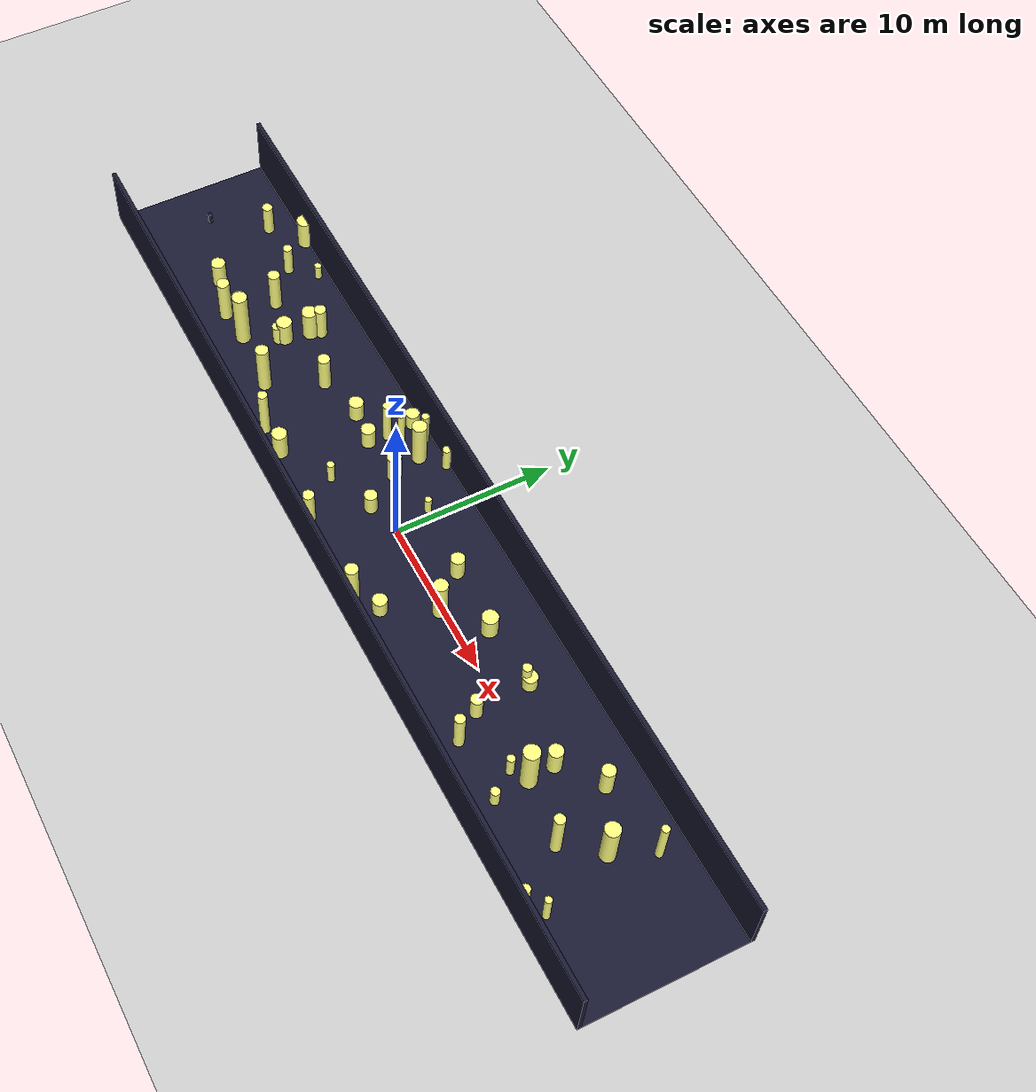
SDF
<?xml version="1.0"?>
<sdf version="1.4">
  <world name="default">
    <gui>
      <camera name="user_camera">
        <pose>-20 -30 40 0 0.66 0.83</pose>
      </camera>
    </gui>
    <include>
      <uri>model://ground_plane</uri>
    </include>
    <include>
      <uri>model://sun</uri>
    </include>
    <scene>
      <shadows>0</shadows>
    </scene>
    <model name="forest">
      <static>true</static>
      <link name="cylinder0">
        <pose>-15.289260330830452 2.4499274054998743 1.1608418596724268 0 0 0 </pose>
        <visual name="visual">
          <geometry>
            <cylinder>
              <radius>0.3690294138205221</radius>
              <length>2.3216837193448536</length>
            </cylinder>
          </geometry>
          <material>
            <ambient>0.6 0.6 0.6 1</ambient>
            <diffuse>1 1 0.5 1</diffuse>
            <specular>0 0 0</specular>
            <emissive>0 0 0 1</emissive>
          </material>
        </visual>
        <collision name="collision">
          <geometry>
            <cylinder>
              <radius>0.3690294138205221</radius>
              <length>2.3216837193448536</length>
            </cylinder>
          </geometry>
          <max_contacts>0</max_contacts>
        </collision>
      </link>
      <link name="cylinder1">
        <pose>-15.572497373251965 1.8468787676419964 1.0574849576745982 0 0 0 </pose>
        <visual name="visual">
          <geometry>
            <cylinder>
              <radius>0.48398743980550707</radius>
              <length>2.1149699153491963</length>
            </cylinder>
          </geometry>
          <material>
            <ambient>0.6 0.6 0.6 1</ambient>
            <diffuse>1 1 0.5 1</diffuse>
            <specular>0 0 0</specular>
            <emissive>0 0 0 1</emissive>
          </material>
        </visual>
        <collision name="collision">
          <geometry>
            <cylinder>
              <radius>0.48398743980550707</radius>
              <length>2.1149699153491963</length>
            </cylinder>
          </geometry>
          <max_contacts>0</max_contacts>
        </collision>
      </link>
      <link name="cylinder2">
        <pose>-15.984993093523931 -0.16406091697505154 0.6859283784338622 0 0 0 </pose>
        <visual name="visual">
          <geometry>
            <cylinder>
              <radius>0.3185983253345309</radius>
              <length>1.3718567568677245</length>
            </cylinder>
          </geometry>
          <material>
            <ambient>0.6 0.6 0.6 1</ambient>
            <diffuse>1 1 0.5 1</diffuse>
            <specular>0 0 0</specular>
            <emissive>0 0 0 1</emissive>
          </material>
        </visual>
        <collision name="collision">
          <geometry>
            <cylinder>
              <radius>0.3185983253345309</radius>
              <length>1.3718567568677245</length>
            </cylinder>
          </geometry>
          <max_contacts>0</max_contacts>
        </collision>
      </link>
      <link name="cylinder3">
        <pose>-24.666872875678358 3.132232859912227 1.058898304421697 0 0 0 </pose>
        <visual name="visual">
          <geometry>
            <cylinder>
              <radius>0.3321329737576638</radius>
              <length>2.117796608843394</length>
            </cylinder>
          </geometry>
          <material>
            <ambient>0.6 0.6 0.6 1</ambient>
            <diffuse>1 1 0.5 1</diffuse>
            <specular>0 0 0</specular>
            <emissive>0 0 0 1</emissive>
          </material>
        </visual>
        <collision name="collision">
          <geometry>
            <cylinder>
              <radius>0.3321329737576638</radius>
              <length>2.117796608843394</length>
            </cylinder>
          </geometry>
          <max_contacts>0</max_contacts>
        </collision>
      </link>
      <link name="cylinder4">
        <pose>-19.27921544847548 -2.227011595769776 1.5180359666071812 0 0 0 </pose>
        <visual name="visual">
          <geometry>
            <cylinder>
              <radius>0.3972547110706489</radius>
              <length>3.0360719332143624</length>
            </cylinder>
          </geometry>
          <material>
            <ambient>0.6 0.6 0.6 1</ambient>
            <diffuse>1 1 0.5 1</diffuse>
            <specular>0 0 0</specular>
            <emissive>0 0 0 1</emissive>
          </material>
        </visual>
        <collision name="collision">
          <geometry>
            <cylinder>
              <radius>0.3972547110706489</radius>
              <length>3.0360719332143624</length>
            </cylinder>
          </geometry>
          <max_contacts>0</max_contacts>
        </collision>
      </link>
      <link name="cylinder5">
        <pose>-20.918100866194457 2.822550952235689 1.0514446093071528 0 0 0 </pose>
        <visual name="visual">
          <geometry>
            <cylinder>
              <radius>0.29275987572240236</radius>
              <length>2.1028892186143056</length>
            </cylinder>
          </geometry>
          <material>
            <ambient>0.6 0.6 0.6 1</ambient>
            <diffuse>1 1 0.5 1</diffuse>
            <specular>0 0 0</specular>
            <emissive>0 0 0 1</emissive>
          </material>
        </visual>
        <collision name="collision">
          <geometry>
            <cylinder>
              <radius>0.29275987572240236</radius>
              <length>2.1028892186143056</length>
            </cylinder>
          </geometry>
          <max_contacts>0</max_contacts>
        </collision>
      </link>
      <link name="cylinder6">
        <pose>-5.065670430147819 4.452285074561852 1.202775650062124 0 0 0 </pose>
        <visual name="visual">
          <geometry>
            <cylinder>
              <radius>0.2304358945814513</radius>
              <length>2.405551300124248</length>
            </cylinder>
          </geometry>
          <material>
            <ambient>0.6 0.6 0.6 1</ambient>
            <diffuse>1 1 0.5 1</diffuse>
            <specular>0 0 0</specular>
            <emissive>0 0 0 1</emissive>
          </material>
        </visual>
        <collision name="collision">
          <geometry>
            <cylinder>
              <radius>0.2304358945814513</radius>
              <length>2.405551300124248</length>
            </cylinder>
          </geometry>
          <max_contacts>0</max_contacts>
        </collision>
      </link>
      <link name="cylinder7">
        <pose>-22.628017444352732 4.798529005148703 1.0204177521717324 0 0 0 </pose>
        <visual name="visual">
          <geometry>
            <cylinder>
              <radius>0.49737727974928087</radius>
              <length>2.0408355043434647</length>
            </cylinder>
          </geometry>
          <material>
            <ambient>0.6 0.6 0.6 1</ambient>
            <diffuse>1 1 0.5 1</diffuse>
            <specular>0 0 0</specular>
            <emissive>0 0 0 1</emissive>
          </material>
        </visual>
        <collision name="collision">
          <geometry>
            <cylinder>
              <radius>0.49737727974928087</radius>
              <length>2.0408355043434647</length>
            </cylinder>
          </geometry>
          <max_contacts>0</max_contacts>
        </collision>
      </link>
      <link name="cylinder8">
        <pose>4.079479252383962 1.8499735629052791 0.790864636766508 0 0 0 </pose>
        <visual name="visual">
          <geometry>
            <cylinder>
              <radius>0.41752556517894135</radius>
              <length>1.581729273533016</length>
            </cylinder>
          </geometry>
          <material>
            <ambient>0.6 0.6 0.6 1</ambient>
            <diffuse>1 1 0.5 1</diffuse>
            <specular>0 0 0</specular>
            <emissive>0 0 0 1</emissive>
          </material>
        </visual>
        <collision name="collision">
          <geometry>
            <cylinder>
              <radius>0.41752556517894135</radius>
              <length>1.581729273533016</length>
            </cylinder>
          </geometry>
          <max_contacts>0</max_contacts>
        </collision>
      </link>
      <link name="cylinder9">
        <pose>-17.132511887638774 -2.010830496490482 1.9184919214557403 0 0 0 </pose>
        <visual name="visual">
          <geometry>
            <cylinder>
              <radius>0.46853598198087126</radius>
              <length>3.8369838429114806</length>
            </cylinder>
          </geometry>
          <material>
            <ambient>0.6 0.6 0.6 1</ambient>
            <diffuse>1 1 0.5 1</diffuse>
            <specular>0 0 0</specular>
            <emissive>0 0 0 1</emissive>
          </material>
        </visual>
        <collision name="collision">
          <geometry>
            <cylinder>
              <radius>0.46853598198087126</radius>
              <length>3.8369838429114806</length>
            </cylinder>
          </geometry>
          <max_contacts>0</max_contacts>
        </collision>
      </link>
      <link name="cylinder10">
        <pose>23.256669371672203 -4.39508641309501 1.1496753164579943 0 0 0 </pose>
        <visual name="visual">
          <geometry>
            <cylinder>
              <radius>0.2746978614766049</radius>
              <length>2.2993506329159885</length>
            </cylinder>
          </geometry>
          <material>
            <ambient>0.6 0.6 0.6 1</ambient>
            <diffuse>1 1 0.5 1</diffuse>
            <specular>0 0 0</specular>
            <emissive>0 0 0 1</emissive>
          </material>
        </visual>
        <collision name="collision">
          <geometry>
            <cylinder>
              <radius>0.2746978614766049</radius>
              <length>2.2993506329159885</length>
            </cylinder>
          </geometry>
          <max_contacts>0</max_contacts>
        </collision>
      </link>
      <link name="cylinder11">
        <pose>-0.4873342173589492 2.3243197278888283 0.5816434447847749 0 0 0 </pose>
        <visual name="visual">
          <geometry>
            <cylinder>
              <radius>0.2086343888917833</radius>
              <length>1.1632868895695498</length>
            </cylinder>
          </geometry>
          <material>
            <ambient>0.6 0.6 0.6 1</ambient>
            <diffuse>1 1 0.5 1</diffuse>
            <specular>0 0 0</specular>
            <emissive>0 0 0 1</emissive>
          </material>
        </visual>
        <collision name="collision">
          <geometry>
            <cylinder>
              <radius>0.2086343888917833</radius>
              <length>1.1632868895695498</length>
            </cylinder>
          </geometry>
          <max_contacts>0</max_contacts>
        </collision>
      </link>
      <link name="cylinder12">
        <pose>-5.0081991017687635 -1.7404225525781838 0.7547102846645957 0 0 0 </pose>
        <visual name="visual">
          <geometry>
            <cylinder>
              <radius>0.22863684463773395</radius>
              <length>1.5094205693291913</length>
            </cylinder>
          </geometry>
          <material>
            <ambient>0.6 0.6 0.6 1</ambient>
            <diffuse>1 1 0.5 1</diffuse>
            <specular>0 0 0</specular>
            <emissive>0 0 0 1</emissive>
          </material>
        </visual>
        <collision name="collision">
          <geometry>
            <cylinder>
              <radius>0.22863684463773395</radius>
              <length>1.5094205693291913</length>
            </cylinder>
          </geometry>
          <max_contacts>0</max_contacts>
        </collision>
      </link>
      <link name="cylinder13">
        <pose>-6.280845431341746 2.5561813950707997 1.5556109316289641 0 0 0 </pose>
        <visual name="visual">
          <geometry>
            <cylinder>
              <radius>0.26170646876802334</radius>
              <length>3.1112218632579283</length>
            </cylinder>
          </geometry>
          <material>
            <ambient>0.6 0.6 0.6 1</ambient>
            <diffuse>1 1 0.5 1</diffuse>
            <specular>0 0 0</specular>
            <emissive>0 0 0 1</emissive>
          </material>
        </visual>
        <collision name="collision">
          <geometry>
            <cylinder>
              <radius>0.26170646876802334</radius>
              <length>3.1112218632579283</length>
            </cylinder>
          </geometry>
          <max_contacts>0</max_contacts>
        </collision>
      </link>
      <link name="cylinder14">
        <pose>23.876343294263073 3.21836232108015 1.5578132470800632 0 0 0 </pose>
        <visual name="visual">
          <geometry>
            <cylinder>
              <radius>0.23252729708551723</radius>
              <length>3.1156264941601264</length>
            </cylinder>
          </geometry>
          <material>
            <ambient>0.6 0.6 0.6 1</ambient>
            <diffuse>1 1 0.5 1</diffuse>
            <specular>0 0 0</specular>
            <emissive>0 0 0 1</emissive>
          </material>
        </visual>
        <collision name="collision">
          <geometry>
            <cylinder>
              <radius>0.23252729708551723</radius>
              <length>3.1156264941601264</length>
            </cylinder>
          </geometry>
          <max_contacts>0</max_contacts>
        </collision>
      </link>
      <link name="cylinder15">
        <pose>19.392271012198243 2.660431007058105 1.0243158395807221 0 0 0 </pose>
        <visual name="visual">
          <geometry>
            <cylinder>
              <radius>0.3985298397829494</radius>
              <length>2.0486316791614443</length>
            </cylinder>
          </geometry>
          <material>
            <ambient>0.6 0.6 0.6 1</ambient>
            <diffuse>1 1 0.5 1</diffuse>
            <specular>0 0 0</specular>
            <emissive>0 0 0 1</emissive>
          </material>
        </visual>
        <collision name="collision">
          <geometry>
            <cylinder>
              <radius>0.3985298397829494</radius>
              <length>2.0486316791614443</length>
            </cylinder>
          </geometry>
          <max_contacts>0</max_contacts>
        </collision>
      </link>
      <link name="cylinder16">
        <pose>-4.071755411184252 3.555999982738488 1.584039438977332 0 0 0 </pose>
        <visual name="visual">
          <geometry>
            <cylinder>
              <radius>0.44976729771543955</radius>
              <length>3.168078877954664</length>
            </cylinder>
          </geometry>
          <material>
            <ambient>0.6 0.6 0.6 1</ambient>
            <diffuse>1 1 0.5 1</diffuse>
            <specular>0 0 0</specular>
            <emissive>0 0 0 1</emissive>
          </material>
        </visual>
        <collision name="collision">
          <geometry>
            <cylinder>
              <radius>0.44976729771543955</radius>
              <length>3.168078877954664</length>
            </cylinder>
          </geometry>
          <max_contacts>0</max_contacts>
        </collision>
      </link>
      <link name="cylinder17">
        <pose>-6.4163610679220895 1.3764562539252392 0.7093826039149298 0 0 0 </pose>
        <visual name="visual">
          <geometry>
            <cylinder>
              <radius>0.43988432135910316</radius>
              <length>1.4187652078298596</length>
            </cylinder>
          </geometry>
          <material>
            <ambient>0.6 0.6 0.6 1</ambient>
            <diffuse>1 1 0.5 1</diffuse>
            <specular>0 0 0</specular>
            <emissive>0 0 0 1</emissive>
          </material>
        </visual>
        <collision name="collision">
          <geometry>
            <cylinder>
              <radius>0.43988432135910316</radius>
              <length>1.4187652078298596</length>
            </cylinder>
          </geometry>
          <max_contacts>0</max_contacts>
        </collision>
      </link>
      <link name="cylinder18">
        <pose>24.223025510136445 -3.62391126047478 1.0698482587494103 0 0 0 </pose>
        <visual name="visual">
          <geometry>
            <cylinder>
              <radius>0.20821943738791998</radius>
              <length>2.1396965174988205</length>
            </cylinder>
          </geometry>
          <material>
            <ambient>0.6 0.6 0.6 1</ambient>
            <diffuse>1 1 0.5 1</diffuse>
            <specular>0 0 0</specular>
            <emissive>0 0 0 1</emissive>
          </material>
        </visual>
        <collision name="collision">
          <geometry>
            <cylinder>
              <radius>0.20821943738791998</radius>
              <length>2.1396965174988205</length>
            </cylinder>
          </geometry>
          <max_contacts>0</max_contacts>
        </collision>
      </link>
      <link name="cylinder19">
        <pose>17.108592354080194 0.8333486349599397 0.9264350302844013 0 0 0 </pose>
        <visual name="visual">
          <geometry>
            <cylinder>
              <radius>0.425707444432846</radius>
              <length>1.8528700605688027</length>
            </cylinder>
          </geometry>
          <material>
            <ambient>0.6 0.6 0.6 1</ambient>
            <diffuse>1 1 0.5 1</diffuse>
            <specular>0 0 0</specular>
            <emissive>0 0 0 1</emissive>
          </material>
        </visual>
        <collision name="collision">
          <geometry>
            <cylinder>
              <radius>0.425707444432846</radius>
              <length>1.8528700605688027</length>
            </cylinder>
          </geometry>
          <max_contacts>0</max_contacts>
        </collision>
      </link>
      <link name="cylinder20">
        <pose>17.243964433596254 -0.7969024976349726 1.6849702176776467 0 0 0 </pose>
        <visual name="visual">
          <geometry>
            <cylinder>
              <radius>0.4830582443326914</radius>
              <length>3.3699404353552933</length>
            </cylinder>
          </geometry>
          <material>
            <ambient>0.6 0.6 0.6 1</ambient>
            <diffuse>1 1 0.5 1</diffuse>
            <specular>0 0 0</specular>
            <emissive>0 0 0 1</emissive>
          </material>
        </visual>
        <collision name="collision">
          <geometry>
            <cylinder>
              <radius>0.4830582443326914</radius>
              <length>3.3699404353552933</length>
            </cylinder>
          </geometry>
          <max_contacts>0</max_contacts>
        </collision>
      </link>
      <link name="cylinder21">
        <pose>16.33509576489159 -1.4172929208212706 0.7975775268675667 0 0 0 </pose>
        <visual name="visual">
          <geometry>
            <cylinder>
              <radius>0.2347941363386384</radius>
              <length>1.5951550537351333</length>
            </cylinder>
          </geometry>
          <material>
            <ambient>0.6 0.6 0.6 1</ambient>
            <diffuse>1 1 0.5 1</diffuse>
            <specular>0 0 0</specular>
            <emissive>0 0 0 1</emissive>
          </material>
        </visual>
        <collision name="collision">
          <geometry>
            <cylinder>
              <radius>0.2347941363386384</radius>
              <length>1.5951550537351333</length>
            </cylinder>
          </geometry>
          <max_contacts>0</max_contacts>
        </collision>
      </link>
      <link name="cylinder22">
        <pose>-6.4720408125753295 4.33096292703709 0.5686122627084893 0 0 0 </pose>
        <visual name="visual">
          <geometry>
            <cylinder>
              <radius>0.4154811577152083</radius>
              <length>1.1372245254169786</length>
            </cylinder>
          </geometry>
          <material>
            <ambient>0.6 0.6 0.6 1</ambient>
            <diffuse>1 1 0.5 1</diffuse>
            <specular>0 0 0</specular>
            <emissive>0 0 0 1</emissive>
          </material>
        </visual>
        <collision name="collision">
          <geometry>
            <cylinder>
              <radius>0.4154811577152083</radius>
              <length>1.1372245254169786</length>
            </cylinder>
          </geometry>
          <max_contacts>0</max_contacts>
        </collision>
      </link>
      <link name="cylinder23">
        <pose>1.9838218329607251 -4.785765649330676 0.5870815847965244 0 0 0 </pose>
        <visual name="visual">
          <geometry>
            <cylinder>
              <radius>0.3276777252798261</radius>
              <length>1.1741631695930488</length>
            </cylinder>
          </geometry>
          <material>
            <ambient>0.6 0.6 0.6 1</ambient>
            <diffuse>1 1 0.5 1</diffuse>
            <specular>0 0 0</specular>
            <emissive>0 0 0 1</emissive>
          </material>
        </visual>
        <collision name="collision">
          <geometry>
            <cylinder>
              <radius>0.3276777252798261</radius>
              <length>1.1741631695930488</length>
            </cylinder>
          </geometry>
          <max_contacts>0</max_contacts>
        </collision>
      </link>
      <link name="cylinder24">
        <pose>-18.694422132724192 0.9129694760244744 1.4023961337937771 0 0 0 </pose>
        <visual name="visual">
          <geometry>
            <cylinder>
              <radius>0.37467228026496</radius>
              <length>2.8047922675875543</length>
            </cylinder>
          </geometry>
          <material>
            <ambient>0.6 0.6 0.6 1</ambient>
            <diffuse>1 1 0.5 1</diffuse>
            <specular>0 0 0</specular>
            <emissive>0 0 0 1</emissive>
          </material>
        </visual>
        <collision name="collision">
          <geometry>
            <cylinder>
              <radius>0.37467228026496</radius>
              <length>2.8047922675875543</length>
            </cylinder>
          </geometry>
          <max_contacts>0</max_contacts>
        </collision>
      </link>
      <link name="cylinder25">
        <pose>-2.7986302564383543 4.7199243701741675 0.8669849782443423 0 0 0 </pose>
        <visual name="visual">
          <geometry>
            <cylinder>
              <radius>0.25130204945415546</radius>
              <length>1.7339699564886846</length>
            </cylinder>
          </geometry>
          <material>
            <ambient>0.6 0.6 0.6 1</ambient>
            <diffuse>1 1 0.5 1</diffuse>
            <specular>0 0 0</specular>
            <emissive>0 0 0 1</emissive>
          </material>
        </visual>
        <collision name="collision">
          <geometry>
            <cylinder>
              <radius>0.25130204945415546</radius>
              <length>1.7339699564886846</length>
            </cylinder>
          </geometry>
          <max_contacts>0</max_contacts>
        </collision>
      </link>
      <link name="cylinder26">
        <pose>5.940254843629823 -0.2123644920524157 1.444769412615527 0 0 0 </pose>
        <visual name="visual">
          <geometry>
            <cylinder>
              <radius>0.43152125487291426</radius>
              <length>2.889538825231054</length>
            </cylinder>
          </geometry>
          <material>
            <ambient>0.6 0.6 0.6 1</ambient>
            <diffuse>1 1 0.5 1</diffuse>
            <specular>0 0 0</specular>
            <emissive>0 0 0 1</emissive>
          </material>
        </visual>
        <collision name="collision">
          <geometry>
            <cylinder>
              <radius>0.43152125487291426</radius>
              <length>2.889538825231054</length>
            </cylinder>
          </geometry>
          <max_contacts>0</max_contacts>
        </collision>
      </link>
      <link name="cylinder27">
        <pose>-19.62386466409437 4.2892647670802795 0.5235067776500284 0 0 0 </pose>
        <visual name="visual">
          <geometry>
            <cylinder>
              <radius>0.2204092544865589</radius>
              <length>1.0470135553000568</length>
            </cylinder>
          </geometry>
          <material>
            <ambient>0.6 0.6 0.6 1</ambient>
            <diffuse>1 1 0.5 1</diffuse>
            <specular>0 0 0</specular>
            <emissive>0 0 0 1</emissive>
          </material>
        </visual>
        <collision name="collision">
          <geometry>
            <cylinder>
              <radius>0.2204092544865589</radius>
              <length>1.0470135553000568</length>
            </cylinder>
          </geometry>
          <max_contacts>0</max_contacts>
        </collision>
      </link>
      <link name="cylinder28">
        <pose>-3.0685798320204896 -4.028767559962287 1.1912163961674538 0 0 0 </pose>
        <visual name="visual">
          <geometry>
            <cylinder>
              <radius>0.34658762730521103</radius>
              <length>2.3824327923349076</length>
            </cylinder>
          </geometry>
          <material>
            <ambient>0.6 0.6 0.6 1</ambient>
            <diffuse>1 1 0.5 1</diffuse>
            <specular>0 0 0</specular>
            <emissive>0 0 0 1</emissive>
          </material>
        </visual>
        <collision name="collision">
          <geometry>
            <cylinder>
              <radius>0.34658762730521103</radius>
              <length>2.3824327923349076</length>
            </cylinder>
          </geometry>
          <max_contacts>0</max_contacts>
        </collision>
      </link>
      <link name="cylinder29">
        <pose>17.475688180789405 -2.945146581949291 0.6013702788007578 0 0 0 </pose>
        <visual name="visual">
          <geometry>
            <cylinder>
              <radius>0.27176265301223795</radius>
              <length>1.2027405576015155</length>
            </cylinder>
          </geometry>
          <material>
            <ambient>0.6 0.6 0.6 1</ambient>
            <diffuse>1 1 0.5 1</diffuse>
            <specular>0 0 0</specular>
            <emissive>0 0 0 1</emissive>
          </material>
        </visual>
        <collision name="collision">
          <geometry>
            <cylinder>
              <radius>0.27176265301223795</radius>
              <length>1.2027405576015155</length>
            </cylinder>
          </geometry>
          <max_contacts>0</max_contacts>
        </collision>
      </link>
      <link name="cylinder30">
        <pose>-13.133523297793708 -2.3508996026787354 1.702330123162374 0 0 0 </pose>
        <visual name="visual">
          <geometry>
            <cylinder>
              <radius>0.40615060391122726</radius>
              <length>3.404660246324748</length>
            </cylinder>
          </geometry>
          <material>
            <ambient>0.6 0.6 0.6 1</ambient>
            <diffuse>1 1 0.5 1</diffuse>
            <specular>0 0 0</specular>
            <emissive>0 0 0 1</emissive>
          </material>
        </visual>
        <collision name="collision">
          <geometry>
            <cylinder>
              <radius>0.40615060391122726</radius>
              <length>3.404660246324748</length>
            </cylinder>
          </geometry>
          <max_contacts>0</max_contacts>
        </collision>
      </link>
      <link name="cylinder31">
        <pose>-8.096375404480217 -3.5945286359101436 0.9600300161160928 0 0 0 </pose>
        <visual name="visual">
          <geometry>
            <cylinder>
              <radius>0.467880439458773</radius>
              <length>1.9200600322321857</length>
            </cylinder>
          </geometry>
          <material>
            <ambient>0.6 0.6 0.6 1</ambient>
            <diffuse>1 1 0.5 1</diffuse>
            <specular>0 0 0</specular>
            <emissive>0 0 0 1</emissive>
          </material>
        </visual>
        <collision name="collision">
          <geometry>
            <cylinder>
              <radius>0.467880439458773</radius>
              <length>1.9200600322321857</length>
            </cylinder>
          </geometry>
          <max_contacts>0</max_contacts>
        </collision>
      </link>
      <link name="cylinder32">
        <pose>12.45311846444092 -1.379406321207648 0.7964403203500059 0 0 0 </pose>
        <visual name="visual">
          <geometry>
            <cylinder>
              <radius>0.35611500780225325</radius>
              <length>1.5928806407000118</length>
            </cylinder>
          </geometry>
          <material>
            <ambient>0.6 0.6 0.6 1</ambient>
            <diffuse>1 1 0.5 1</diffuse>
            <specular>0 0 0</specular>
            <emissive>0 0 0 1</emissive>
          </material>
        </visual>
        <collision name="collision">
          <geometry>
            <cylinder>
              <radius>0.35611500780225325</radius>
              <length>1.5928806407000118</length>
            </cylinder>
          </geometry>
          <max_contacts>0</max_contacts>
        </collision>
      </link>
      <link name="cylinder33">
        <pose>21.15438024907447 -1.3606760336398627 1.712825112698893 0 0 0 </pose>
        <visual name="visual">
          <geometry>
            <cylinder>
              <radius>0.31395376959589594</radius>
              <length>3.425650225397786</length>
            </cylinder>
          </geometry>
          <material>
            <ambient>0.6 0.6 0.6 1</ambient>
            <diffuse>1 1 0.5 1</diffuse>
            <specular>0 0 0</specular>
            <emissive>0 0 0 1</emissive>
          </material>
        </visual>
        <collision name="collision">
          <geometry>
            <cylinder>
              <radius>0.31395376959589594</radius>
              <length>3.425650225397786</length>
            </cylinder>
          </geometry>
          <max_contacts>0</max_contacts>
        </collision>
      </link>
      <link name="cylinder34">
        <pose>-17.656941978165094 -1.8341434314179095 1.6151761204333384 0 0 0 </pose>
        <visual name="visual">
          <geometry>
            <cylinder>
              <radius>0.48012773525139163</radius>
              <length>3.2303522408666767</length>
            </cylinder>
          </geometry>
          <material>
            <ambient>0.6 0.6 0.6 1</ambient>
            <diffuse>1 1 0.5 1</diffuse>
            <specular>0 0 0</specular>
            <emissive>0 0 0 1</emissive>
          </material>
        </visual>
        <collision name="collision">
          <geometry>
            <cylinder>
              <radius>0.48012773525139163</radius>
              <length>3.2303522408666767</length>
            </cylinder>
          </geometry>
          <max_contacts>0</max_contacts>
        </collision>
      </link>
      <link name="cylinder35">
        <pose>-21.978678217539493 -1.4756014852755217 0.9032858337498695 0 0 0 </pose>
        <visual name="visual">
          <geometry>
            <cylinder>
              <radius>0.44935106959715715</radius>
              <length>1.806571667499739</length>
            </cylinder>
          </geometry>
          <material>
            <ambient>0.6 0.6 0.6 1</ambient>
            <diffuse>1 1 0.5 1</diffuse>
            <specular>0 0 0</specular>
            <emissive>0 0 0 1</emissive>
          </material>
        </visual>
        <collision name="collision">
          <geometry>
            <cylinder>
              <radius>0.44935106959715715</radius>
              <length>1.806571667499739</length>
            </cylinder>
          </geometry>
          <max_contacts>0</max_contacts>
        </collision>
      </link>
      <link name="cylinder36">
        <pose>12.246377274493739 2.0240342570116887 0.5040207355608536 0 0 0 </pose>
        <visual name="visual">
          <geometry>
            <cylinder>
              <radius>0.43951148074768553</radius>
              <length>1.0080414711217072</length>
            </cylinder>
          </geometry>
          <material>
            <ambient>0.6 0.6 0.6 1</ambient>
            <diffuse>1 1 0.5 1</diffuse>
            <specular>0 0 0</specular>
            <emissive>0 0 0 1</emissive>
          </material>
        </visual>
        <collision name="collision">
          <geometry>
            <cylinder>
              <radius>0.43951148074768553</radius>
              <length>1.0080414711217072</length>
            </cylinder>
          </geometry>
          <max_contacts>0</max_contacts>
        </collision>
      </link>
      <link name="cylinder37">
        <pose>12.005977555353951 1.9289790173946404 0.8445095528271792 0 0 0 </pose>
        <visual name="visual">
          <geometry>
            <cylinder>
              <radius>0.27535213833373073</radius>
              <length>1.6890191056543584</length>
            </cylinder>
          </geometry>
          <material>
            <ambient>0.6 0.6 0.6 1</ambient>
            <diffuse>1 1 0.5 1</diffuse>
            <specular>0 0 0</specular>
            <emissive>0 0 0 1</emissive>
          </material>
        </visual>
        <collision name="collision">
          <geometry>
            <cylinder>
              <radius>0.27535213833373073</radius>
              <length>1.6890191056543584</length>
            </cylinder>
          </geometry>
          <max_contacts>0</max_contacts>
        </collision>
      </link>
      <link name="cylinder38">
        <pose>-3.5410512011276367 1.6612110036667609 0.977884922973935 0 0 0 </pose>
        <visual name="visual">
          <geometry>
            <cylinder>
              <radius>0.4323393806785189</radius>
              <length>1.95576984594787</length>
            </cylinder>
          </geometry>
          <material>
            <ambient>0.6 0.6 0.6 1</ambient>
            <diffuse>1 1 0.5 1</diffuse>
            <specular>0 0 0</specular>
            <emissive>0 0 0 1</emissive>
          </material>
        </visual>
        <collision name="collision">
          <geometry>
            <cylinder>
              <radius>0.4323393806785189</radius>
              <length>1.95576984594787</length>
            </cylinder>
          </geometry>
          <max_contacts>0</max_contacts>
        </collision>
      </link>
      <link name="cylinder39">
        <pose>13.57955995039103 -3.021852660626132 1.3411002132886356 0 0 0 </pose>
        <visual name="visual">
          <geometry>
            <cylinder>
              <radius>0.30944844711762887</radius>
              <length>2.682200426577271</length>
            </cylinder>
          </geometry>
          <material>
            <ambient>0.6 0.6 0.6 1</ambient>
            <diffuse>1 1 0.5 1</diffuse>
            <specular>0 0 0</specular>
            <emissive>0 0 0 1</emissive>
          </material>
        </visual>
        <collision name="collision">
          <geometry>
            <cylinder>
              <radius>0.30944844711762887</radius>
              <length>2.682200426577271</length>
            </cylinder>
          </geometry>
          <max_contacts>0</max_contacts>
        </collision>
      </link>
      <link name="cylinder40">
        <pose>-11.566322563568953 0.9470445015220346 1.2377196702504927 0 0 0 </pose>
        <visual name="visual">
          <geometry>
            <cylinder>
              <radius>0.3806720432515157</radius>
              <length>2.4754393405009854</length>
            </cylinder>
          </geometry>
          <material>
            <ambient>0.6 0.6 0.6 1</ambient>
            <diffuse>1 1 0.5 1</diffuse>
            <specular>0 0 0</specular>
            <emissive>0 0 0 1</emissive>
          </material>
        </visual>
        <collision name="collision">
          <geometry>
            <cylinder>
              <radius>0.3806720432515157</radius>
              <length>2.4754393405009854</length>
            </cylinder>
          </geometry>
          <max_contacts>0</max_contacts>
        </collision>
      </link>
      <link name="cylinder41">
        <pose>-8.570898575887842 1.6245085568234172 0.6678093991073284 0 0 0 </pose>
        <visual name="visual">
          <geometry>
            <cylinder>
              <radius>0.4499294651908141</radius>
              <length>1.3356187982146568</length>
            </cylinder>
          </geometry>
          <material>
            <ambient>0.6 0.6 0.6 1</ambient>
            <diffuse>1 1 0.5 1</diffuse>
            <specular>0 0 0</specular>
            <emissive>0 0 0 1</emissive>
          </material>
        </visual>
        <collision name="collision">
          <geometry>
            <cylinder>
              <radius>0.4499294651908141</radius>
              <length>1.3356187982146568</length>
            </cylinder>
          </geometry>
          <max_contacts>0</max_contacts>
        </collision>
      </link>
      <link name="cylinder42">
        <pose>2.9645107522629495 -4.196188283893257 1.5753814049115769 0 0 0 </pose>
        <visual name="visual">
          <geometry>
            <cylinder>
              <radius>0.39444828048756053</radius>
              <length>3.1507628098231537</length>
            </cylinder>
          </geometry>
          <material>
            <ambient>0.6 0.6 0.6 1</ambient>
            <diffuse>1 1 0.5 1</diffuse>
            <specular>0 0 0</specular>
            <emissive>0 0 0 1</emissive>
          </material>
        </visual>
        <collision name="collision">
          <geometry>
            <cylinder>
              <radius>0.39444828048756053</radius>
              <length>3.1507628098231537</length>
            </cylinder>
          </geometry>
          <max_contacts>0</max_contacts>
        </collision>
      </link>
      <link name="cylinder43">
        <pose>-5.11454852063985 2.9016336371313436 1.6859651206884985 0 0 0 </pose>
        <visual name="visual">
          <geometry>
            <cylinder>
              <radius>0.22664574527700418</radius>
              <length>3.371930241376997</length>
            </cylinder>
          </geometry>
          <material>
            <ambient>0.6 0.6 0.6 1</ambient>
            <diffuse>1 1 0.5 1</diffuse>
            <specular>0 0 0</specular>
            <emissive>0 0 0 1</emissive>
          </material>
        </visual>
        <collision name="collision">
          <geometry>
            <cylinder>
              <radius>0.22664574527700418</radius>
              <length>3.371930241376997</length>
            </cylinder>
          </geometry>
          <max_contacts>0</max_contacts>
        </collision>
      </link>
      <link name="cylinder44">
        <pose>-15.867962681224979 0.2577842148337339 0.8400226940634454 0 0 0 </pose>
        <visual name="visual">
          <geometry>
            <cylinder>
              <radius>0.4775621077056356</radius>
              <length>1.6800453881268909</length>
            </cylinder>
          </geometry>
          <material>
            <ambient>0.6 0.6 0.6 1</ambient>
            <diffuse>1 1 0.5 1</diffuse>
            <specular>0 0 0</specular>
            <emissive>0 0 0 1</emissive>
          </material>
        </visual>
        <collision name="collision">
          <geometry>
            <cylinder>
              <radius>0.4775621077056356</radius>
              <length>1.6800453881268909</length>
            </cylinder>
          </geometry>
          <max_contacts>0</max_contacts>
        </collision>
      </link>
      <link name="cylinder45">
        <pose>4.3489380828279245 -3.1615230474287204 0.5996067036867345 0 0 0 </pose>
        <visual name="visual">
          <geometry>
            <cylinder>
              <radius>0.4335470523557261</radius>
              <length>1.199213407373469</length>
            </cylinder>
          </geometry>
          <material>
            <ambient>0.6 0.6 0.6 1</ambient>
            <diffuse>1 1 0.5 1</diffuse>
            <specular>0 0 0</specular>
            <emissive>0 0 0 1</emissive>
          </material>
        </visual>
        <collision name="collision">
          <geometry>
            <cylinder>
              <radius>0.4335470523557261</radius>
              <length>1.199213407373469</length>
            </cylinder>
          </geometry>
          <max_contacts>0</max_contacts>
        </collision>
      </link>
      <link name="cylinder46">
        <pose>-10.035381491756358 -3.7051812343477697 1.7053159012780355 0 0 0 </pose>
        <visual name="visual">
          <geometry>
            <cylinder>
              <radius>0.304143689206913</radius>
              <length>3.410631802556071</length>
            </cylinder>
          </geometry>
          <material>
            <ambient>0.6 0.6 0.6 1</ambient>
            <diffuse>1 1 0.5 1</diffuse>
            <specular>0 0 0</specular>
            <emissive>0 0 0 1</emissive>
          </material>
        </visual>
        <collision name="collision">
          <geometry>
            <cylinder>
              <radius>0.304143689206913</radius>
              <length>3.410631802556071</length>
            </cylinder>
          </geometry>
          <max_contacts>0</max_contacts>
        </collision>
      </link>
      <link name="cylinder47">
        <pose>8.237873301255838 1.690554492604587 0.762089185866345 0 0 0 </pose>
        <visual name="visual">
          <geometry>
            <cylinder>
              <radius>0.4901280651054851</radius>
              <length>1.52417837173269</length>
            </cylinder>
          </geometry>
          <material>
            <ambient>0.6 0.6 0.6 1</ambient>
            <diffuse>1 1 0.5 1</diffuse>
            <specular>0 0 0</specular>
            <emissive>0 0 0 1</emissive>
          </material>
        </visual>
        <collision name="collision">
          <geometry>
            <cylinder>
              <radius>0.4901280651054851</radius>
              <length>1.52417837173269</length>
            </cylinder>
          </geometry>
          <max_contacts>0</max_contacts>
        </collision>
      </link>
      <link name="cylinder48">
        <pose>22.734676189412568 0.8078522128907544 1.5926708093852704 0 0 0 </pose>
        <visual name="visual">
          <geometry>
            <cylinder>
              <radius>0.4574213093480536</radius>
              <length>3.185341618770541</length>
            </cylinder>
          </geometry>
          <material>
            <ambient>0.6 0.6 0.6 1</ambient>
            <diffuse>1 1 0.5 1</diffuse>
            <specular>0 0 0</specular>
            <emissive>0 0 0 1</emissive>
          </material>
        </visual>
        <collision name="collision">
          <geometry>
            <cylinder>
              <radius>0.4574213093480536</radius>
              <length>3.185341618770541</length>
            </cylinder>
          </geometry>
          <max_contacts>0</max_contacts>
        </collision>
      </link>
      <link name="cylinder49">
        <pose>-2.1055910285718724 -0.5672212588229968 0.7008141114759485 0 0 0 </pose>
        <visual name="visual">
          <geometry>
            <cylinder>
              <radius>0.3953160158762318</radius>
              <length>1.401628222951897</length>
            </cylinder>
          </geometry>
          <material>
            <ambient>0.6 0.6 0.6 1</ambient>
            <diffuse>1 1 0.5 1</diffuse>
            <specular>0 0 0</specular>
            <emissive>0 0 0 1</emissive>
          </material>
        </visual>
        <collision name="collision">
          <geometry>
            <cylinder>
              <radius>0.3953160158762318</radius>
              <length>1.401628222951897</length>
            </cylinder>
          </geometry>
          <max_contacts>0</max_contacts>
        </collision>
      </link>
      <link name="cube0">
        <pose>0 5.0 2.0 0 0 0 </pose>
        <visual name="visual">
          <geometry>
            <box>
              <size>60.0 0.25 4.0</size>
            </box>
          </geometry>
          <material>
            <ambient>0.1 0.1 0.1 1</ambient>
            <diffuse>0.1 0.1 0.2 1</diffuse>
            <specular>0 0 0</specular>
            <emissive>0 0 0 1</emissive>
          </material>
        </visual>
        <collision name="collision">
          <geometry>
            <box>
              <size>60.0 0.25 4.0</size>
            </box>
          </geometry>
          <max_contacts>0</max_contacts>
        </collision>
      </link>
      <link name="cube1">
        <pose>0 -5.0 2.0 0 0 0 </pose>
        <visual name="visual">
          <geometry>
            <box>
              <size>60.0 0.25 4.0</size>
            </box>
          </geometry>
          <material>
            <ambient>0.1 0.1 0.1 1</ambient>
            <diffuse>0.1 0.1 0.2 1</diffuse>
            <specular>0 0 0</specular>
            <emissive>0 0 0 1</emissive>
          </material>
        </visual>
        <collision name="collision">
          <geometry>
            <box>
              <size>60.0 0.25 4.0</size>
            </box>
          </geometry>
          <max_contacts>0</max_contacts>
        </collision>
      </link>
      <link name="cube2">
        <pose>0 0 0.03125 0 0 0 </pose>
        <visual name="visual">
          <geometry>
            <box>
              <size>60.0 10 0.0625</size>
            </box>
          </geometry>
          <material>
            <ambient>0.1 0.1 0.1 1</ambient>
            <diffuse>0.1 0.1 0.2 1</diffuse>
            <specular>0 0 0</specular>
            <emissive>0 0 0 1</emissive>
          </material>
        </visual>
        <collision name="collision">
          <geometry>
            <box>
              <size>60.0 10 0.0625</size>
            </box>
          </geometry>
          <max_contacts>0</max_contacts>
        </collision>
      </link>
      <link name="cube3">
        <pose>-27.0 0.0 0.25 0 0 0 </pose>
        <visual name="visual">
          <geometry>
            <box>
              <size>0.25 0.25 1.0</size>
            </box>
          </geometry>
          <material>
            <ambient>0.1 0.1 0.1 1</ambient>
            <diffuse>0.1 0.1 0.2 1</diffuse>
            <specular>0 0 0</specular>
            <emissive>0 0 0 1</emissive>
          </material>
        </visual>
        <collision name="collision">
          <geometry>
            <box>
              <size>0.25 0.25 1.0</size>
            </box>
          </geometry>
          <max_contacts>0</max_contacts>
        </collision>
      </link>
    </model>
    <!-- Physics -->
    <physics name="default_physics" default="0" type="ode">
      <max_step_size>0.004</max_step_size>
      <real_time_factor>1</real_time_factor>
      <real_time_update_rate>250</real_time_update_rate>
      <gravity>0 0 -9.8</gravity>
      <magnetic_field>6e-06 2.3e-05 -4.2e-05</magnetic_field>
      <ode>
        <solver>
          <type>quick</type>
          <iters>1000</iters>
          <sor>1.3</sor>
          <use_dynamic_moi_rescaling>0</use_dynamic_moi_rescaling>
        </solver>
        <constraints>
          <cfm>0</cfm>
          <erp>0.2</erp>
          <contact_max_correcting_vel>100</contact_max_correcting_vel>
          <contact_surface_layer>0.001</contact_surface_layer>
        </constraints>
      </ode>
    </physics>
  </world>
</sdf>
